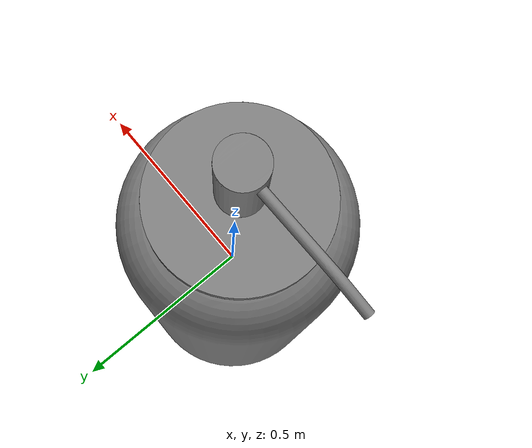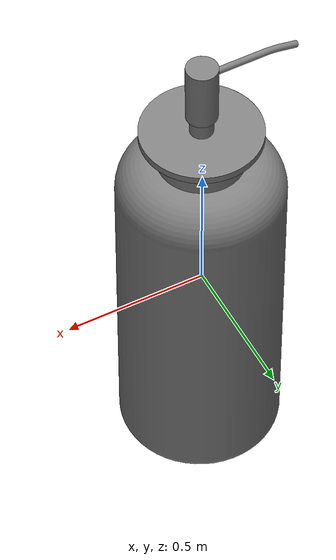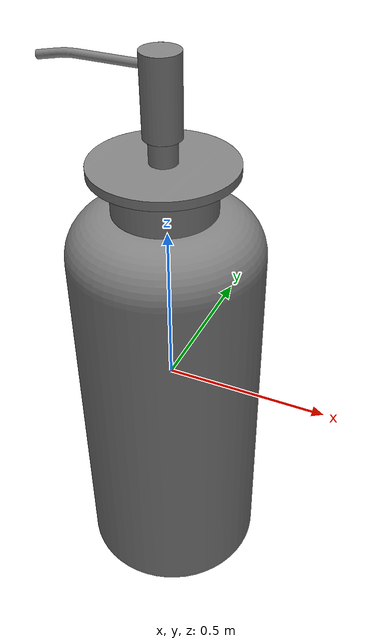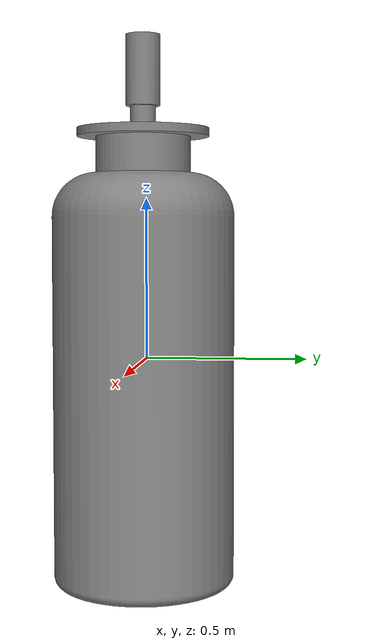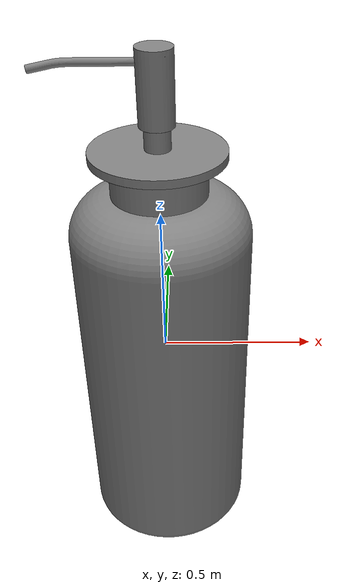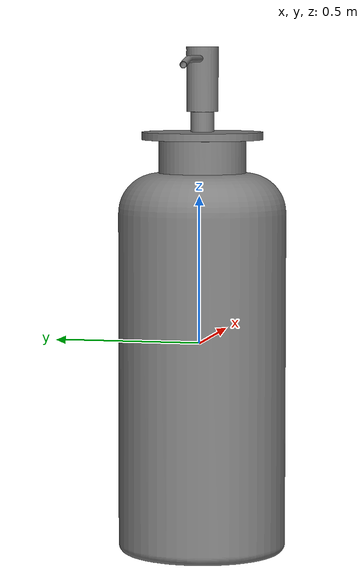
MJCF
<?xml version='1.0' encoding='UTF-8'?>
<mujoco model="partnet_e4855c2e-b91c-4372-81fc-cedf42a99185-0">
  <compiler angle="radian"/>
  <asset>
    <mesh name="original_6" content_type="model/obj" file="textured_objs/original_6.obj"/>
    <mesh name="original_4" content_type="model/obj" file="textured_objs/original_4.obj"/>
    <mesh name="original_3" content_type="model/obj" file="textured_objs/original_3.obj"/>
    <mesh name="original_10" content_type="model/obj" file="textured_objs/original_10.obj"/>
    <mesh name="original_7" content_type="model/obj" file="textured_objs/original_7.obj"/>
    <mesh name="original_9" content_type="model/obj" file="textured_objs/original_9.obj"/>
  </asset>
  <worldbody>
    <body name="base">
      <body name="link_2" quat="0.5 0.5 -0.5 -0.5">
        <geom type="mesh" mesh="original_9"/>
        <body name="link_1_helper" pos="0.00975005 0 0.000198531">
          <inertial pos="0 0 0" mass="1e-06" diaginertia="1e-10 1e-10 1e-10"/>
          <joint name="joint_4" pos="0 0 0" axis="0 1 0" type="slide" range="0 0.02"/>
          <body name="link_1">
            <joint name="joint_1" pos="0 0 0" axis="0 -1 0"/>
            <geom pos="-0.00975005 0 -0.000198531" quat="1 0 0 0" type="mesh" mesh="original_10"/>
            <geom pos="-0.00975005 0 -0.000198531" quat="1 0 0 0" type="mesh" mesh="original_7"/>
            <body name="link_0_helper" pos="5.61388e-08 0 -1.39414e-07">
              <inertial pos="0 0 0" mass="1e-06" diaginertia="1e-10 1e-10 1e-10"/>
              <joint name="joint_3" pos="0 0 0" axis="0 -1 0" type="slide" range="0 0.06"/>
              <body name="link_0">
                <joint name="joint_0" pos="0 0 0" axis="0 1 0"/>
                <geom pos="-0.00975011 0 -0.000198392" quat="1 0 0 0" type="mesh" mesh="original_6"/>
                <geom pos="-0.00975011 0 -0.000198392" type="mesh" mesh="original_4"/>
                <geom pos="-0.00975011 0 -0.000198392" type="mesh" mesh="original_3"/>
              </body>
            </body>
          </body>
        </body>
      </body>
    </body>
  </worldbody>
</mujoco>
